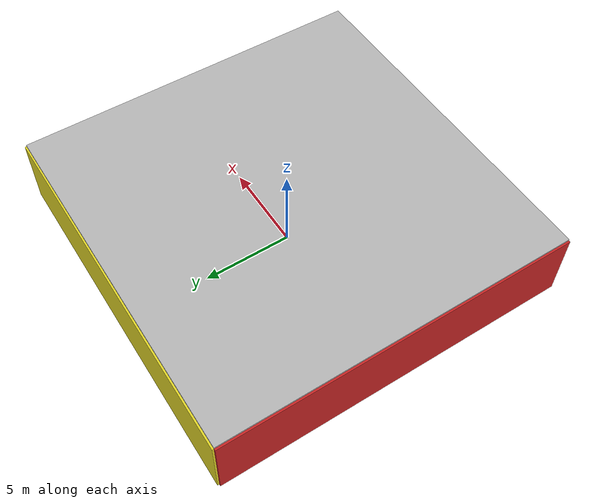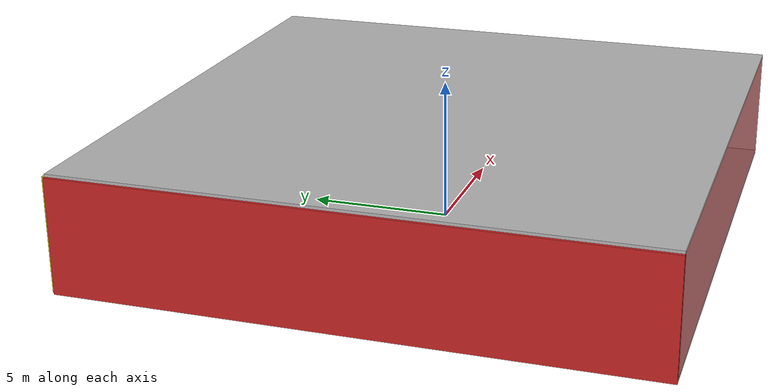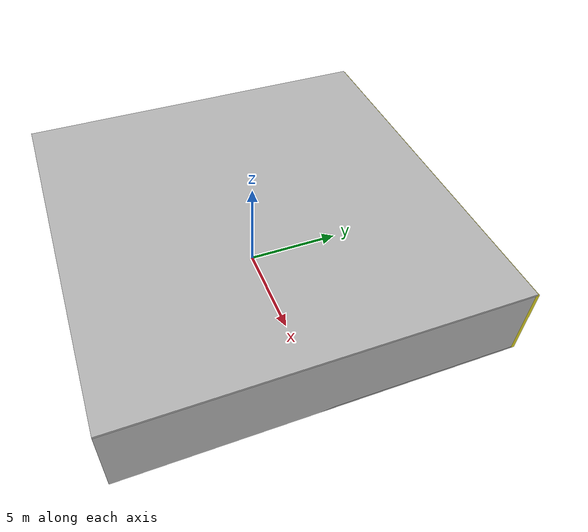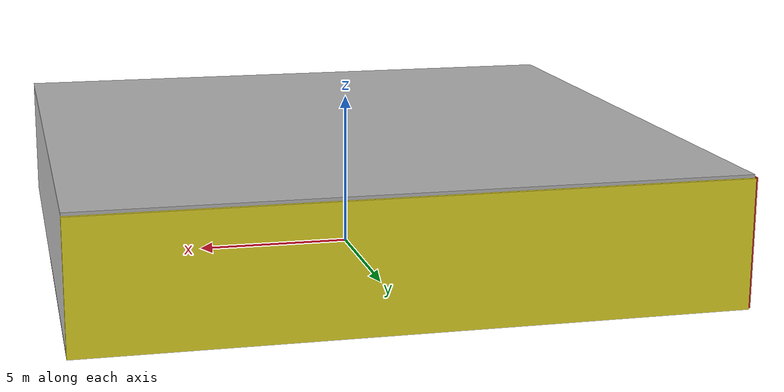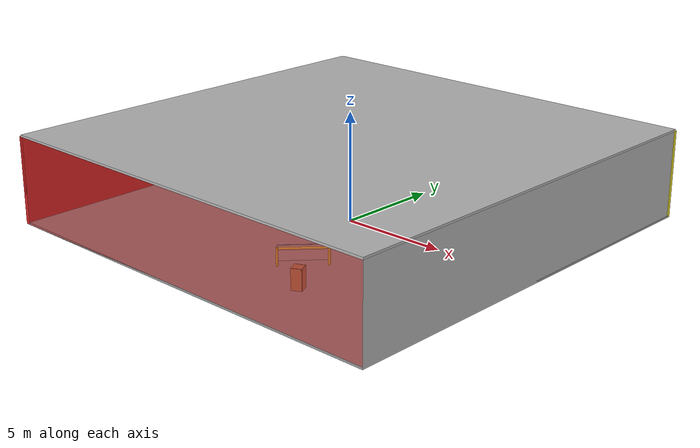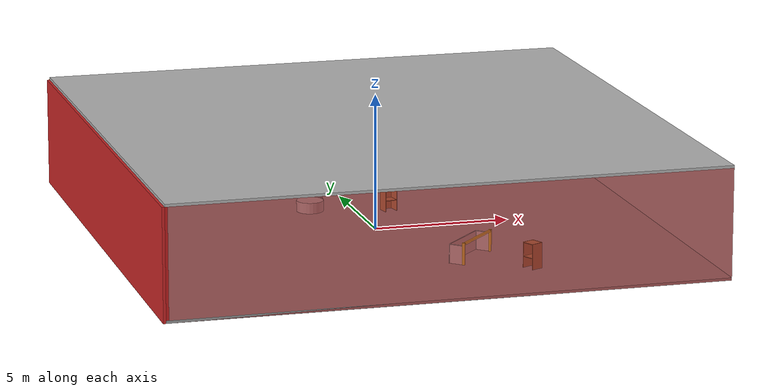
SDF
<sdf version="1.4">
 <world name="default">
  <physics type="ode">
   <max_step_size>0.001</max_step_size>
   <real_time_factor>1</real_time_factor>
   <real_time_update_rate>1000</real_time_update_rate>
   <gravity>0 0 -9.8</gravity>
  </physics>
  <scene><ambient>0.4 0.4 0.4 1</ambient><background>0.7 0.7 0.7 1</background><shadows>1</shadows></scene>
  <model name="Surrounding">
   <static>1</static>
   <link name="Ceiling">
    <collision name="Ceiling_Collision"><geometry><box><size>20 20 0.1</size></box></geometry></collision>
    <visual name="Ceiling_Visual">
     <geometry><box><size>20 20 0.1</size></box></geometry>
     <material>
      <script><uri>file://media/materials/scripts/gazebo.material</uri><name>Gazebo/Pioneer2Body</name></script>
     </material>
    </visual>
    <pose>0 0 4.05 0 0 0</pose>
   </link>
   <link name="Wall_South">
    <collision name="Wall_South_Collision">
     <geometry><box><size>20 0 4</size></box></geometry>
     <pose>0 0 2 0 -0 0</pose>
    </collision>
    <visual name="Wall_South_Visual">
     <pose>0 0 2 0 -0 0</pose>
     <geometry><box><size>20 0 4</size></box></geometry>
     <material>
      <script><uri>file://media/materials/scripts/gazebo.material</uri><name>Gazebo/RedTransparent</name></script>
     </material>
    </visual>
    <velocity_decay><linear>0</linear><angular>0</angular></velocity_decay>
    <pose>0 -10 0 0 -0 0</pose>
   </link>
   <link name="Wall_East">
    <collision name="Wall_21_Collision">
     <geometry><box><size>20 0 4</size></box></geometry>
     <pose>0 0 2 0 -0 0</pose>
    </collision>
    <visual name="Wall_21_Visual">
     <pose>0 0 2 0 -0 0</pose>
     <geometry><box><size>20 0 4</size></box></geometry>
     <material>
      <script><uri>file://media/materials/scripts/gazebo.material</uri><name>Gazebo/CloudySky</name></script>
     </material>
    </visual>
    <velocity_decay><linear>0</linear><angular>0</angular></velocity_decay>
    <pose>10 0 0 0 -0 1.5708</pose>
   </link>
   <link name="Wall_North">
    <collision name="Wall_22_Collision">
     <geometry><box><size>20 0.2 4</size></box></geometry>
     <pose>0 0 2 0 -0 0</pose>
    </collision>
    <visual name="Wall_22_Visual">
     <pose>0 0 2 0 -0 0</pose>
     <geometry><box><size>20 0.2 4</size></box></geometry>
     <material>
      <script><uri>file://media/materials/scripts/gazebo.material</uri><name>Gazebo/Yellow</name></script>
     </material>
    </visual>
    <velocity_decay><linear>0</linear><angular>0</angular></velocity_decay>
    <pose>0 10 0 0 -0 0</pose>
   </link>
   <link name="Wall_West">
    <collision name="Wall_23_Collision">
     <geometry><box><size>20 0.2 4</size></box></geometry>
     <pose>0 0 2 0 -0 0</pose>
    </collision>
    <visual name="Wall_23_Visual">
     <pose>0 0 2 0 -0 0</pose>
     <geometry><box><size>20 0.2 4</size></box></geometry>
     <material>
      <script><uri>file://media/materials/scripts/gazebo.material</uri><name>Gazebo/RedGlow</name></script>
     </material>
    </visual>
    <velocity_decay><linear>0</linear><angular>0</angular></velocity_decay>
    <pose>-10 0 0 0 0 -1.5708</pose>
   </link>
   <link name="Ground_link">
    <collision name="collision">
     <pose>0 0 .05 0 -0 0</pose>
     <geometry><box><size>20 20 0.1</size></box></geometry>
    </collision>
    <visual name="visual">
     <pose>0 0 .05 0 -0 0</pose>
     <geometry><box><size>20 20 0.1</size></box></geometry>
     <material>
      <script><uri>file://media/materials/scripts/gazebo.material</uri><name>Gazebo/GreyGradientSky</name></script>
     </material>
    </visual>
   </link>
   <static>1</static>
  </model>
  <spherical_coordinates>
   <surface_model>EARTH_WGS84</surface_model>
   <latitude_deg>0</latitude_deg>
   <longitude_deg>0</longitude_deg>
   <elevation>0</elevation>
   <heading_deg>0</heading_deg>
  </spherical_coordinates>
  <light name="lightball_0" type="diffuse">
   <diffuse>0.8 0.8 0.8 1</diffuse>
   <specular>0.2 0.2 0.2 1</specular>
   <attenuation>
    <range>100</range>
    <constant>0.7</constant>
    <linear>0.01</linear>
    <quadratic>0.001</quadratic>
   </attenuation>
   <direction>-0.5 0.1 -0.9</direction>
   <pose>-5.55729223532 4.24528318307 2.67274934 0 0 0</pose>
  </light>
  <light name="lightball_1" type="diffuse">
   <diffuse>0.8 0.8 0.8 1</diffuse>
   <specular>0.2 0.2 0.2 1</specular>
   <attenuation>
    <range>100</range>
    <constant>0.7</constant>
    <linear>0.01</linear>
    <quadratic>0.001</quadratic>
   </attenuation>
   <direction>-0.5 0.1 -0.9</direction>
   <pose>0.995005722801 -5.96823572771 1.74098165314 0 0 0</pose>
  </light>
  <light name="lightball_2" type="diffuse">
   <diffuse>0.8 0.8 0.8 1</diffuse>
   <specular>0.2 0.2 0.2 1</specular>
   <attenuation>
    <range>100</range>
    <constant>0.7</constant>
    <linear>0.01</linear>
    <quadratic>0.001</quadratic>
   </attenuation>
   <direction>-0.5 0.1 -0.9</direction>
   <pose>-0.450448493859 9.94883676472 3.4139605809 0 0 0</pose>
  </light>
  <light name="lightball_3" type="diffuse">
   <diffuse>0.8 0.8 0.8 1</diffuse>
   <specular>0.2 0.2 0.2 1</specular>
   <attenuation>
    <range>100</range>
    <constant>0.7</constant>
    <linear>0.01</linear>
    <quadratic>0.001</quadratic>
   </attenuation>
   <direction>-0.5 0.1 -0.9</direction>
   <pose>-3.32013551895 8.02613018275 2.74849337097 0 0 0</pose>
  </light>
  <light name="lightball_4" type="diffuse">
   <diffuse>0.8 0.8 0.8 1</diffuse>
   <specular>0.2 0.2 0.2 1</specular>
   <attenuation>
    <range>100</range>
    <constant>0.7</constant>
    <linear>0.01</linear>
    <quadratic>0.001</quadratic>
   </attenuation>
   <direction>-0.5 0.1 -0.9</direction>
   <pose>-7.91388621178 8.75234768354 3.88090308994 0 0 0</pose>
  </light>
  <light name="lightball_5" type="diffuse">
   <diffuse>0.8 0.8 0.8 1</diffuse>
   <specular>0.2 0.2 0.2 1</specular>
   <attenuation>
    <range>100</range>
    <constant>0.7</constant>
    <linear>0.01</linear>
    <quadratic>0.001</quadratic>
   </attenuation>
   <direction>-0.5 0.1 -0.9</direction>
   <pose>-8.47175494146 0.172041304492 2.61898263864 0 0 0</pose>
  </light>
  <light name="lightball_6" type="diffuse">
   <diffuse>0.8 0.8 0.8 1</diffuse>
   <specular>0.2 0.2 0.2 1</specular>
   <attenuation>
    <range>100</range>
    <constant>0.7</constant>
    <linear>0.01</linear>
    <quadratic>0.001</quadratic>
   </attenuation>
   <direction>-0.5 0.1 -0.9</direction>
   <pose>-4.26283042638 2.60483813782 3.8832012838 0 0 0</pose>
  </light>
  <light name="lightball_7" type="diffuse">
   <diffuse>0.8 0.8 0.8 1</diffuse>
   <specular>0.2 0.2 0.2 1</specular>
   <attenuation>
    <range>100</range>
    <constant>0.7</constant>
    <linear>0.01</linear>
    <quadratic>0.001</quadratic>
   </attenuation>
   <direction>-0.5 0.1 -0.9</direction>
   <pose>1.74752529572 5.6719877329 2.72879541793 0 0 0</pose>
  </light>
  <light name="lightball_8" type="diffuse">
   <diffuse>0.8 0.8 0.8 1</diffuse>
   <specular>0.2 0.2 0.2 1</specular>
   <attenuation>
    <range>100</range>
    <constant>0.7</constant>
    <linear>0.01</linear>
    <quadratic>0.001</quadratic>
   </attenuation>
   <direction>-0.5 0.1 -0.9</direction>
   <pose>-8.94673234271 -6.39378020979 2.1202744825 0 0 0</pose>
  </light>
  <light name="lightball_9" type="diffuse">
   <diffuse>0.8 0.8 0.8 1</diffuse>
   <specular>0.2 0.2 0.2 1</specular>
   <attenuation>
    <range>100</range>
    <constant>0.7</constant>
    <linear>0.01</linear>
    <quadratic>0.001</quadratic>
   </attenuation>
   <direction>-0.5 0.1 -0.9</direction>
   <pose>-7.78582418273 9.9706727169 1.67062316814 0 0 0</pose>
  </light>
  <light name="lightball_10" type="diffuse">
   <diffuse>0.8 0.8 0.8 1</diffuse>
   <specular>0.2 0.2 0.2 1</specular>
   <attenuation>
    <range>100</range>
    <constant>0.7</constant>
    <linear>0.01</linear>
    <quadratic>0.001</quadratic>
   </attenuation>
   <direction>-0.5 0.1 -0.9</direction>
   <pose>-7.34343606318 0.459459099639 3.18267324001 0 0 0</pose>
  </light>
  <light name="lightball_11" type="diffuse">
   <diffuse>0.8 0.8 0.8 1</diffuse>
   <specular>0.2 0.2 0.2 1</specular>
   <attenuation>
    <range>100</range>
    <constant>0.7</constant>
    <linear>0.01</linear>
    <quadratic>0.001</quadratic>
   </attenuation>
   <direction>-0.5 0.1 -0.9</direction>
   <pose>8.12693322351 4.97644292541 3.02054115864 0 0 0</pose>
  </light>
  <include><uri>model://cabinet</uri><pose>-3.72096040759 7.73743714231 0 0 0 1.81850412875</pose></include>
  <include>
   <uri>model://textured_shapes</uri>
   <pose>-1.31548773873 4.29392687909 0 0 0 2.87514485528</pose>
  </include>
  <include>
   <uri>model://robocup_3Dsim_goal</uri>
   <pose>2.26820273283 -5.16397855721 0 0 0 2.38565116735</pose>
  </include>
  <include><uri>model://cabinet</uri><pose>1.1093171847 2.15800953239 0 0 0 1.76446234351</pose></include>
  <include><uri>model://cabinet</uri><pose>3.75949406917 -6.90875086373 0 0 0 0.447203231844</pose></include>
 </world>
</sdf>

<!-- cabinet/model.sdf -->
<sdf version="1.5">
  <model name="cabinet">
    <static>true</static>
    <link name="cabinet_bottom_plate">
      <inertial>
        <pose>0 0 -1 0 0 0</pose>
        <inertia>
          <ixx>2.050000</ixx>
          <ixy>0</ixy>
          <ixz>0</ixz>
          <iyy>2.050000</iyy>
          <iyz>0</iyz>
          <izz>2.050000</izz>
        </inertia>
        <mass>25.000000</mass>
      </inertial>
      <collision name="cabinet_bottom_plate_geom">
        <pose>0 0 0.010000 0 0 0</pose>
        <geometry>
          <box>
            <size>0.450000 0.450000 0.020000</size>
          </box>
        </geometry>
      </collision>
      <visual name="cabinet_bottom_plate_geom_visual">
        <pose>0 0 0.010000 0 0 0</pose>
        <geometry>
          <box>
            <size>0.450000 0.450000 0.020000</size>
          </box>
        </geometry>
        <material>
          <script>
            <uri>model://media/materials/scripts/gazebo.material</uri>
            <name>Gazebo/Wood</name>
          </script>
        </material>
      </visual>
      <collision name="cabinet_bottom_plate_geom_cabinet_back_plate">
        <pose>0.235000 0 0.510000 0 0 0</pose>
        <geometry>
          <box>
            <size>0.020000 0.450000 1.020000</size>
          </box>
        </geometry>
      </collision>
      <visual name="cabinet_bottom_plate_geom_cabinet_back_plate_visual">
        <pose>0.235000 0 0.510000 0 0 0</pose>
        <geometry>
          <box>
            <size>0.020000 0.450000 1.020000</size>
          </box>
        </geometry>
        <material>
          <script>
            <uri>model://media/materials/scripts/gazebo.material</uri>
            <name>Gazebo/Wood</name>
          </script>
        </material>
      </visual>
      <collision name="cabinet_bottom_plate_geom_cabinet_left_plate">
        <pose>0 0.235000 0.510000 0 0 0</pose>
        <geometry>
          <box>
            <size>0.450000 0.020000 1.020000</size>
          </box>
        </geometry>
      </collision>
      <visual name="cabinet_bottom_plate_geom_cabinet_left_plate_visual">
        <pose>0 0.235000 0.510000 0 0 0</pose>
        <geometry>
          <box>
            <size>0.450000 0.020000 1.020000</size>
          </box>
        </geometry>
        <material>
          <script>
            <uri>model://media/materials/scripts/gazebo.material</uri>
            <name>Gazebo/Wood</name>
          </script>
        </material>
      </visual>
      <collision name="cabinet_bottom_plate_geom_cabinet_middle_plate">
        <pose>0 0 0.510000 0 0 0</pose>
        <geometry>
          <box>
            <size>0.450000 0.450000 0.020000</size>
          </box>
        </geometry>
      </collision>
      <visual name="cabinet_bottom_plate_geom_cabinet_middle_plate_visual">
        <pose>0 0 0.510000 0 0 0</pose>
        <geometry>
          <box>
            <size>0.450000 0.450000 0.020000</size>
          </box>
        </geometry>
        <material>
          <script>
            <uri>model://media/materials/scripts/gazebo.material</uri>
            <name>Gazebo/Wood</name>
          </script>
        </material>
      </visual>
      <collision name="cabinet_bottom_plate_geom_cabinet_right_plate">
        <pose>0 -0.235000 0.510000 0 0 0</pose>
        <geometry>
          <box>
            <size>0.450000 0.020000 1.020000</size>
          </box>
        </geometry>
      </collision>
      <visual name="cabinet_bottom_plate_geom_cabinet_right_plate_visual">
        <pose>0 -0.235000 0.510000 0 0 0</pose>
        <geometry>
          <box>
            <size>0.450000 0.020000 1.020000</size>
          </box>
        </geometry>
        <material>
          <script>
            <uri>model://media/materials/scripts/gazebo.material</uri>
            <name>Gazebo/Wood</name>
          </script>
        </material>
      </visual>
      <collision name="cabinet_bottom_plate_geom_cabinet_top_plate">
        <pose>0 0 1.010000 0 0 0</pose>
        <geometry>
          <box>
            <size>0.450000 0.450000 0.020000</size>
          </box>
        </geometry>
      </collision>
      <visual name="cabinet_bottom_plate_geom_cabinet_top_plate_visual">
        <pose>0 0 1.010000 0 0 0</pose>
        <geometry>
          <box>
            <size>0.450000 0.450000 0.020000</size>
          </box>
        </geometry>
        <material>
          <script>
            <uri>model://media/materials/scripts/gazebo.material</uri>
            <name>Gazebo/Wood</name>
          </script>
        </material>
      </visual>
    </link>
  </model>
</sdf>

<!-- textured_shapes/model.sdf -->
<sdf version="1.6">
  <model name="textured_shapes">
    <pose>0 0 0.5 0 0 0</pose>
    <link name="box">
      <pose>0 -1.5 0 0 0 0</pose>
      <collision name="collision">
        <geometry>
          <box>
            <size>1 1 1</size>
          </box>
        </geometry>
      </collision>
      <visual name="visual">
        <geometry>
          <box>
            <size>1 1 1</size>
          </box>
        </geometry>
        <material>
          <script>
            <uri>model://../model_source/models/textured_shapes/materials/scripts</uri>
            <uri>model://../model_source/models/textured_shapes/materials/textures</uri>
            <name>TexturedShape/Squares</name>
          </script>
        </material>
      </visual>
    </link>
    <link name="sphere">
      <collision name="collision">
        <geometry>
          <sphere>
            <radius>0.5</radius>
          </sphere>
        </geometry>
      </collision>
      <visual name="visual">
        <geometry>
          <sphere>
            <radius>0.5</radius>
          </sphere>
        </geometry>
        <material>
          <script>
            <uri>model://../model_source/models/textured_shapes/materials/scripts</uri>
            <uri>model://../model_source/models/textured_shapes/materials/textures</uri>
            <name>TexturedShape/Squares</name>
          </script>
        </material>
      </visual>
    </link>
    <link name="cylinder">
      <pose>0 1.5 0 0 0 0</pose>
      <collision name="collision">
        <geometry>
          <cylinder>
            <radius>0.5</radius>
            <length>1</length>
          </cylinder>
        </geometry>
      </collision>
      <visual name="visual">
        <geometry>
          <cylinder>
            <radius>0.5</radius>
            <length>1</length>
          </cylinder>
        </geometry>
        <material>
          <script>
            <uri>model://../model_source/models/textured_shapes/materials/scripts</uri>
            <uri>model://../model_source/models/textured_shapes/materials/textures</uri>
            <name>TexturedShape/Squares</name>
          </script>
        </material>
      </visual>
    </link>
  </model>
</sdf>

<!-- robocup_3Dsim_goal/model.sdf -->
<sdf version="1.5">
  <model name="robocup_3d_goal">
    <static>true</static>
    <link name="left_post">
      <pose>0 1.05 0.45 0 0 0</pose>
      <collision name="collision">
        <geometry>
          <cylinder>
            <radius>0.05</radius>
            <length>0.9</length>
          </cylinder>
        </geometry>
      </collision>
      <visual name="visual">
        <geometry>
          <cylinder>
            <radius>0.05</radius>
            <length>0.9</length>
          </cylinder>
        </geometry>
        <material>
          <script>
            <uri>file://media/materials/scripts/gazebo.material</uri>
            <name>Gazebo/ZincYellow</name>
          </script>
        </material>
      </visual>
    </link>
    <link name="left_support_horiz_lower">
      <pose>0.30 1.05 0.01 0 0 0</pose>
      <collision name="collision">
        <geometry>
          <box>
            <size>0.50 0.02 0.02</size>
          </box>
        </geometry>
      </collision>
      <visual name="visual">
        <geometry>
          <box>
            <size>0.50 0.02 0.02</size>
          </box>
        </geometry>
        <material>
          <script>
            <uri>file://media/materials/scripts/gazebo.material</uri>
            <name>Gazebo/White</name>
          </script>
        </material>
      </visual>
    </link>
    <link name="left_support_horiz_upper">
      <pose>0.30 1.05 0.79 0 0 0</pose>
      <collision name="collision">
        <geometry>
          <box>
            <size>0.50 0.02 0.02</size>
          </box>
        </geometry>
      </collision>
      <visual name="visual">
        <geometry>
          <box>
            <size>0.50 0.02 0.02</size>
          </box>
        </geometry>
        <material>
          <script>
            <uri>file://media/materials/scripts/gazebo.material</uri>
            <name>Gazebo/White</name>
          </script>
        </material>
      </visual>
    </link>
    <link name="left_support_vertical">
      <pose>0.56 1.05 0.4 0 1.5708 0</pose>
      <collision name="collision">
        <geometry>
          <box>
            <size>0.80 0.02 0.02</size>
          </box>
        </geometry>
      </collision>
      <visual name="visual">
        <geometry>
          <box>
            <size>0.80 0.02 0.02</size>
          </box>
        </geometry>
        <material>
          <script>
            <uri>file://media/materials/scripts/gazebo.material</uri>
            <name>Gazebo/White</name>
          </script>
        </material>
      </visual>
    </link>
    <link name="right_support_horiz_lower">
      <pose>0.30 -1.05 0.01 0 0 0</pose>
      <collision name="collision">
        <geometry>
          <box>
            <size>0.50 0.02 0.02</size>
          </box>
        </geometry>
      </collision>
      <visual name="visual">
        <geometry>
          <box>
            <size>0.50 0.02 0.02</size>
          </box>
        </geometry>
        <material>
          <script>
            <uri>file://media/materials/scripts/gazebo.material</uri>
            <name>Gazebo/White</name>
          </script>
        </material>
      </visual>
    </link>
    <link name="right_support_horiz_upper">
      <pose>0.30 -1.05 0.79 0 0 0</pose>
      <collision name="collision">
        <geometry>
          <box>
            <size>0.50 0.02 0.02</size>
          </box>
        </geometry>
      </collision>
      <visual name="visual">
        <geometry>
          <box>
            <size>0.50 0.02 0.02</size>
          </box>
        </geometry>
        <material>
          <script>
            <uri>file://media/materials/scripts/gazebo.material</uri>
            <name>Gazebo/White</name>
          </script>
        </material>
      </visual>
    </link>
    <link name="right_support_vertical">
      <pose>0.56 -1.05 0.4 0 1.5708 0</pose>
      <collision name="collision">
        <geometry>
          <box>
            <size>0.80 0.02 0.02</size>
          </box>
        </geometry>
      </collision>
      <visual name="visual">
        <geometry>
          <box>
            <size>0.80 0.02 0.02</size>
          </box>
        </geometry>
        <material>
          <script>
            <uri>file://media/materials/scripts/gazebo.material</uri>
            <name>Gazebo/White</name>
          </script>
        </material>
      </visual>
    </link>
    <link name="center_support_horiz_lower">
      <pose>0.56 0 0.01 0 1.5708 0</pose>
      <collision name="collision">
        <geometry>
          <box>
            <size>0.02 2.08 0.02</size>
          </box>
        </geometry>
      </collision>
      <visual name="visual">
        <geometry>
          <box>
            <size>0.02 2.08 0.02</size>
          </box>
        </geometry>
        <material>
          <script>
            <uri>file://media/materials/scripts/gazebo.material</uri>
            <name>Gazebo/White</name>
          </script>
        </material>
      </visual>
    </link>
    <link name="center_support_horiz_upper">
      <pose>0.56 0 0.79 0 1.5708 0</pose>
      <collision name="collision">
        <geometry>
          <box>
            <size>0.02 2.08 0.02</size>
          </box>
        </geometry>
      </collision>
      <visual name="visual">
        <geometry>
          <box>
            <size>0.02 2.08 0.02</size>
          </box>
        </geometry>
        <material>
          <script>
            <uri>file://media/materials/scripts/gazebo.material</uri>
            <name>Gazebo/White</name>
          </script>
        </material>
      </visual>
    </link>
    <link name="right_post">
      <pose>0 -1.05 0.45 0 0 0</pose>
      <collision name="collision">
        <geometry>
          <cylinder>
            <radius>0.05</radius>
            <length>0.9</length>
          </cylinder>
        </geometry>
      </collision>
      <visual name="visual">
        <geometry>
          <cylinder>
            <radius>0.05</radius>
            <length>0.9</length>
          </cylinder>
        </geometry>
        <material>
          <script>
            <uri>file://media/materials/scripts/gazebo.material</uri>
            <name>Gazebo/ZincYellow</name>
          </script>
        </material>
      </visual>
    </link>
    <link name="crossbar">
      <pose>0 0 0.85 1.57 1.57 0</pose>
      <collision name="collision">
        <geometry>
          <cylinder>
            <radius>0.05</radius>
            <length>2.0</length>
          </cylinder>
        </geometry>
      </collision>
      <visual name="visual">
        <geometry>
          <cylinder>
            <radius>0.05</radius>
            <length>2.0</length>
          </cylinder>
        </geometry>
        <material>
          <script>
            <uri>file://media/materials/scripts/gazebo.material</uri>
            <name>Gazebo/ZincYellow</name>
          </script>
        </material>
      </visual>
    </link>
    <link name="center_net">
      <pose>0.56 0 0.40 0 0 0</pose>
      <collision name="collision">
        <geometry>
          <box>
            <size>0.01 2.1 0.80</size>
          </box>
        </geometry>
      </collision>
      <visual name="visual">
        <geometry>
          <box>
            <size>0.01 2.1 0.80</size>
          </box>
        </geometry>
        <material>
          <script>
            <uri>model://../model_source/models/robocup09_spl_field/materials/scripts/</uri>
            <uri>model://../model_source/models/robocup09_spl_field/materials/textures/</uri>
            <name>RoboCup/Net</name>
          </script>
        </material>
      </visual>
    </link>
    <link name="left_net">
      <pose>0.30 1.05 0.40 0 0 0</pose>
      <collision name="collision">
        <geometry>
          <box>
            <size>0.50 0.01 0.76</size>
          </box>
        </geometry>
      </collision>
      <visual name="visual">
        <geometry>
          <box>
            <size>0.50 0.01 0.76</size>
          </box>
        </geometry>
        <material>
          <script>
            <uri>model://../model_source/models/robocup09_spl_field/materials/scripts/</uri>
            <uri>model://../model_source/models/robocup09_spl_field/materials/textures/</uri>
            <name>RoboCup/Net</name>
          </script>
        </material>
      </visual>
    </link>
    <link name="right_net">
      <pose>0.30 -1.05 0.40 0 0 0</pose>
      <collision name="collision">
        <geometry>
          <box>
            <size>0.50 0.01 0.76</size>
          </box>
        </geometry>
      </collision>
      <visual name="visual">
        <geometry>
          <box>
            <size>0.50 0.01 0.76</size>
          </box>
        </geometry>
        <material>
          <script>
            <uri>model://../model_source/models/robocup09_spl_field/materials/scripts/</uri>
            <uri>model://../model_source/models/robocup09_spl_field/materials/textures/</uri>
            <name>RoboCup/Net</name>
          </script>
        </material>
      </visual>
    </link>
  </model>
</sdf>
